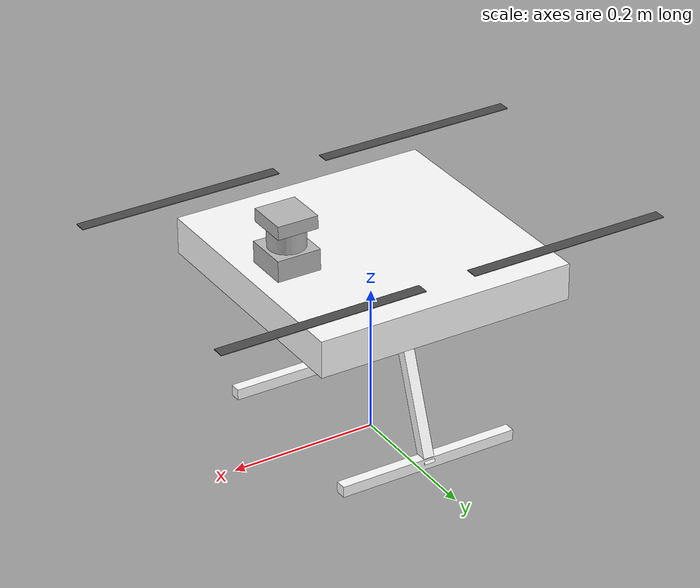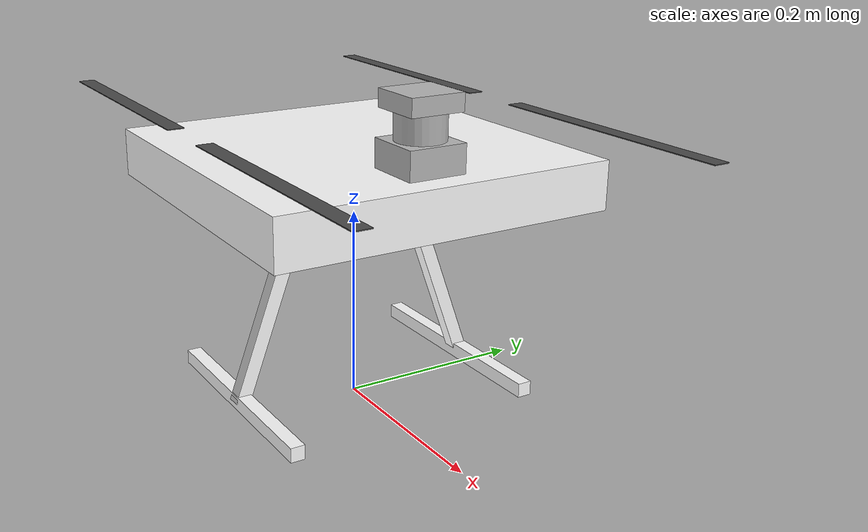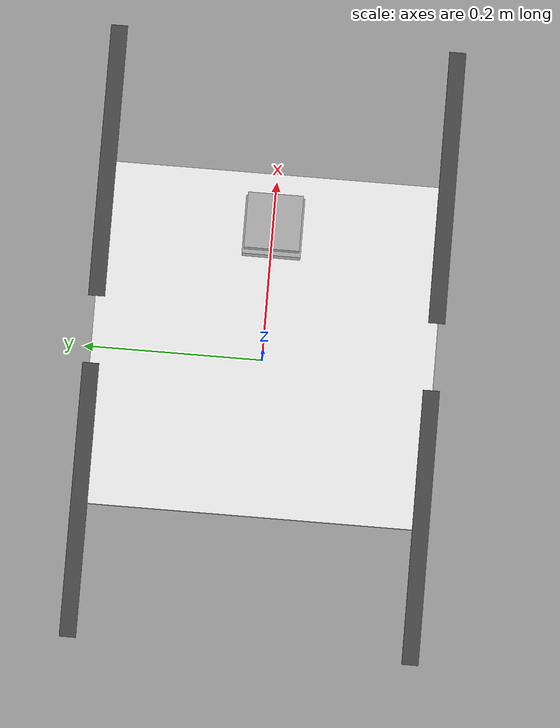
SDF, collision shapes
<?xml version="1.0" encoding="UTF-8"?>
<sdf version='1.9'>
  <model name='x500'>
    <include merge='true'>
      <uri>model://x500_base</uri>
    </include>
    <plugin filename="gz-sim-multicopter-motor-model-system" name="gz::sim::systems::MulticopterMotorModel">
      <jointName>rotor_0_joint</jointName>
      <linkName>rotor_0</linkName>
      <turningDirection>ccw</turningDirection>
      <timeConstantUp>0.0125</timeConstantUp>
      <timeConstantDown>0.025</timeConstantDown>
      <maxRotVelocity>1000.0</maxRotVelocity>
      <motorConstant>8.54858e-06</motorConstant>
      <momentConstant>0.016</momentConstant>
      <commandSubTopic>command/motor_speed</commandSubTopic>
      <motorNumber>0</motorNumber>
      <rotorDragCoefficient>8.06428e-05</rotorDragCoefficient>
      <rollingMomentCoefficient>1e-06</rollingMomentCoefficient>
      <rotorVelocitySlowdownSim>10</rotorVelocitySlowdownSim>
      <motorType>velocity</motorType>
    </plugin>
    <plugin filename="gz-sim-multicopter-motor-model-system" name="gz::sim::systems::MulticopterMotorModel">
      <jointName>rotor_1_joint</jointName>
      <linkName>rotor_1</linkName>
      <turningDirection>ccw</turningDirection>
      <timeConstantUp>0.0125</timeConstantUp>
      <timeConstantDown>0.025</timeConstantDown>
      <maxRotVelocity>1000.0</maxRotVelocity>
      <motorConstant>8.54858e-06</motorConstant>
      <momentConstant>0.016</momentConstant>
      <commandSubTopic>command/motor_speed</commandSubTopic>
      <motorNumber>1</motorNumber>
      <rotorDragCoefficient>8.06428e-05</rotorDragCoefficient>
      <rollingMomentCoefficient>1e-06</rollingMomentCoefficient>
      <rotorVelocitySlowdownSim>10</rotorVelocitySlowdownSim>
      <motorType>velocity</motorType>
    </plugin>
    <plugin filename="gz-sim-multicopter-motor-model-system" name="gz::sim::systems::MulticopterMotorModel">
      <jointName>rotor_2_joint</jointName>
      <linkName>rotor_2</linkName>
      <turningDirection>cw</turningDirection>
      <timeConstantUp>0.0125</timeConstantUp>
      <timeConstantDown>0.025</timeConstantDown>
      <maxRotVelocity>1000.0</maxRotVelocity>
      <motorConstant>8.54858e-06</motorConstant>
      <momentConstant>0.016</momentConstant>
      <commandSubTopic>command/motor_speed</commandSubTopic>
      <motorNumber>2</motorNumber>
      <rotorDragCoefficient>8.06428e-05</rotorDragCoefficient>
      <rollingMomentCoefficient>1e-06</rollingMomentCoefficient>
      <rotorVelocitySlowdownSim>10</rotorVelocitySlowdownSim>
      <motorType>velocity</motorType>
    </plugin>
    <plugin filename="gz-sim-multicopter-motor-model-system" name="gz::sim::systems::MulticopterMotorModel">
      <jointName>rotor_3_joint</jointName>
      <linkName>rotor_3</linkName>
      <turningDirection>cw</turningDirection>
      <timeConstantUp>0.0125</timeConstantUp>
      <timeConstantDown>0.025</timeConstantDown>
      <maxRotVelocity>1000.0</maxRotVelocity>
      <motorConstant>8.54858e-06</motorConstant>
      <momentConstant>0.016</momentConstant>
      <commandSubTopic>command/motor_speed</commandSubTopic>
      <motorNumber>3</motorNumber>
      <rotorDragCoefficient>8.06428e-05</rotorDragCoefficient>
      <rollingMomentCoefficient>1e-06</rollingMomentCoefficient>
      <rotorVelocitySlowdownSim>10</rotorVelocitySlowdownSim>
      <motorType>velocity</motorType>
    </plugin>

    <!-- Sensors -->

    <!-- Lidar 2d -->
    <include merge='true'>
      <uri>model://lidar_2d_v2</uri>
      <pose>.12 0 .26 0 0 0</pose>
    </include>
    <joint name="LidarJoint" type="fixed">
      <parent>base_link</parent>
      <child>link</child>
      <pose>0.0 0 .055 0 0 0</pose>
    </joint>

    <!-- Camera -->
    <include merge='true'>
      <uri>model://mono_cam</uri>
      <pose>.12 .03 .242 0 0 0</pose>
    </include>
    <joint name="CameraJoint" type="fixed">
      <parent>base_link</parent>
      <child>camera_link</child>
      <pose>.12 .03 .242 0 0 0</pose>
    </joint>

    <!-- Depth Camera -->
    <include merge='true'>
      <uri>model://OakD-Lite</uri>
      <pose>.12 .03 .242 0 0 0</pose>
    </include>
    <joint name="DepthCameraJoint" type="fixed">
      <parent>base_link</parent>
      <child>depth_camera_link</child>
      <pose>0.01233 -0.03 .01878 0 0 0</pose>
    </joint>

  </model>
</sdf>

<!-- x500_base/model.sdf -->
<sdf version='1.9'>
  <model name='x500_base'>
    <pose>0 0 .24 0 0 0</pose>
    <self_collide>false</self_collide>
    <static>false</static>
    <link name="base_link">
      <inertial>
        <mass>2.0</mass>
        <inertia>
          <ixx>0.02166666666666667</ixx>
          <ixy>0</ixy>
          <ixz>0</ixz>
          <iyy>0.02166666666666667</iyy>
          <iyz>0</iyz>
          <izz>0.04000000000000001</izz>
        </inertia>
      </inertial>
      <gravity>true</gravity>
      <velocity_decay/>
      <visual name="base_link_visual">
        <pose>0 0 .025 0 0 3.141592654</pose>
        <geometry>
          <mesh>
            <scale>1 1 1</scale>
            <uri>model://x500_base/meshes/NXP-HGD-CF.dae</uri>
          </mesh>
        </geometry>
      </visual>
      <visual name="5010_motor_base_0">
        <pose>0.174 0.174 .032 0 0 -.45</pose>
        <geometry>
          <mesh>
            <scale>1 1 1</scale>
            <uri>model://x500_base/meshes/5010Base.dae</uri>
          </mesh>
        </geometry>
      </visual>
      <visual name="5010_motor_base_1">
        <pose>-0.174 0.174 .032 0 0 -.45</pose>
        <geometry>
          <mesh>
            <scale>1 1 1</scale>
            <uri>model://x500_base/meshes/5010Base.dae</uri>
          </mesh>
        </geometry>
      </visual>
      <visual name="5010_motor_base_2">
        <pose>0.174 -0.174 .032 0 0 -.45</pose>
        <geometry>
          <mesh>
            <scale>1 1 1</scale>
            <uri>model://x500_base/meshes/5010Base.dae</uri>
          </mesh>
        </geometry>
      </visual>
      <visual name="5010_motor_base_3">
        <pose>-0.174 -0.174 .032 0 0 -.45</pose>
        <geometry>
          <mesh>
            <scale>1 1 1</scale>
            <uri>model://x500_base/meshes/5010Base.dae</uri>
          </mesh>
        </geometry>
      </visual>
      <visual name="NXP_FMUK66_FRONT">
        <pose>0.047 .001 .043 1 0 1.57</pose>
        <cast_shadows>false</cast_shadows>
        <geometry>
          <box>
            <size>.013 .007 0.0001</size>
          </box>
        </geometry>
        <material>
          <diffuse>1.0 1.0 1.0</diffuse>
          <specular>1.0 1.0 1.0</specular>
          <pbr>
            <metal>
              <albedo_map>model://x500_base/materials/textures/nxp.png</albedo_map>
            </metal>
          </pbr>
        </material>
      </visual>
      <visual name="NXP_FMUK66_TOP">
        <pose>-0.023 0 .0515 0 0 0</pose>
        <cast_shadows>false</cast_shadows>
        <geometry>
          <box>
            <size>.007 .013 0.0001</size>
          </box>
        </geometry>
        <material>
          <diffuse>1.0 1.0 1.0</diffuse>
          <specular>1.0 1.0 1.0</specular>
          <pbr>
            <metal>
              <albedo_map>model://x500_base/materials/textures/nxp.png</albedo_map>
            </metal>
          </pbr>
        </material>
      </visual>
      <visual name="RDDRONE_FMUK66_TOP">
        <pose>-.03 0 .0515 0 0 0</pose>
        <cast_shadows>false</cast_shadows>
        <geometry>
          <box>
            <size>.0034 .032 0.0001</size>
          </box>
        </geometry>
        <material>
          <diffuse>1.0 1.0 1.0</diffuse>
          <specular>1.0 1.0 1.0</specular>
          <pbr>
            <metal>
              <albedo_map>model://x500_base/materials/textures/rd.png</albedo_map>
            </metal>
          </pbr>
        </material>
      </visual>
      <collision name="base_link_collision_0">
        <pose>0 0 .007 0 0 0</pose>
        <geometry>
          <box>
            <size>0.35355339059327373 0.35355339059327373 0.05</size>
          </box>
        </geometry>
        <surface>
          <contact>
            <ode>
              <min_depth>0.001</min_depth>
              <max_vel>0</max_vel>
            </ode>
          </contact>
          <friction>
            <ode/>
          </friction>
        </surface>
      </collision>
      <collision name="base_link_collision_1">
        <pose>0 -0.098 -.123 -0.35 0 0</pose>
        <geometry>
          <box>
            <size>0.015 0.015 0.21</size>
          </box>
        </geometry>
        <surface>
          <contact>
            <ode>
              <min_depth>0.001</min_depth>
              <max_vel>0</max_vel>
            </ode>
          </contact>
          <friction>
            <ode/>
          </friction>
        </surface>
      </collision>
      <collision name="base_link_collision_2">
        <pose>0 0.098 -.123 0.35 0 0</pose>
        <geometry>
          <box>
            <size>0.015 0.015 0.21</size>
          </box>
        </geometry>
        <surface>
          <contact>
            <ode>
              <min_depth>0.001</min_depth>
              <max_vel>0</max_vel>
            </ode>
          </contact>
          <friction>
            <ode/>
          </friction>
        </surface>
      </collision>
      <collision name="base_link_collision_3">
        <pose>0 -0.132 -.2195 0 0 0</pose>
        <geometry>
          <box>
            <size>0.25 0.015 0.015</size>
          </box>
        </geometry>
        <surface>
          <contact>
            <ode>
              <min_depth>0.001</min_depth>
              <max_vel>0</max_vel>
            </ode>
          </contact>
          <friction>
            <ode/>
          </friction>
        </surface>
      </collision>
      <collision name="base_link_collision_4">
        <pose>0 0.132 -.2195 0 0 0</pose>
        <geometry>
          <box>
            <size>0.25 0.015 0.015</size>
          </box>
        </geometry>
        <surface>
          <contact>
            <ode>
              <min_depth>0.001</min_depth>
              <max_vel>0</max_vel>
            </ode>
          </contact>
          <friction>
            <ode/>
          </friction>
        </surface>
      </collision>
      <sensor name="air_pressure_sensor" type="air_pressure">
        <always_on>1</always_on>
        <update_rate>50</update_rate>
        <air_pressure>
          <!-- Noise modeled after BMP390 -->
          <pressure>
            <noise type="gaussian">
              <mean>0</mean>
              <stddev>3</stddev>
            </noise>
          </pressure>
        </air_pressure>
      </sensor>
      <sensor name="magnetometer_sensor" type="magnetometer">
        <always_on>1</always_on>
        <update_rate>100</update_rate>
        <magnetometer>
          <!-- TODO: update to fix units and coordinate system when we move past Harmonic -->
          <!-- See https://github.com/gazebosim/gz-sim/pull/2460 -->
          <!-- 3mgauss RMS: NOTE: noise is in tesla but sensor reports data in gauss -->
          <!-- Noise modeled after IIS2MDC -->
          <x>
            <noise type="gaussian">
              <stddev>0.0001</stddev>
            </noise>
          </x>
          <y>
            <noise type="gaussian">
              <stddev>0.0001</stddev>
            </noise>
          </y>
          <z>
            <noise type="gaussian">
              <stddev>0.0001</stddev>
            </noise>
          </z>
        </magnetometer>
      </sensor>
      <sensor name="imu_sensor" type="imu">
        <always_on>1</always_on>
        <update_rate>250</update_rate>
        <imu>
          <angular_velocity>
            <!-- Noise modeled after IIM42653 -->
            <!-- 0.05 deg/s converted to rad/s -->
            <x>
              <noise type="gaussian">
                <mean>0.0</mean>
                <stddev>0.0008726646</stddev>
              </noise>
            </x>
            <y>
              <noise type="gaussian">
                <mean>0.0</mean>
                <stddev>0.0008726646</stddev>
              </noise>
            </y>
            <z>
              <noise type="gaussian">
                <mean>0.0</mean>
                <stddev>0.0008726646</stddev>
              </noise>
            </z>
          </angular_velocity>
          <linear_acceleration>
            <!-- Noise modeled after IIM42653 -->
            <!-- X & Y axis: 0.65 mg-rms converted to m/ss -->
            <x>
              <noise type="gaussian">
                <mean>0.0</mean>
                <stddev>0.00637</stddev>
              </noise>
            </x>
            <y>
              <noise type="gaussian">
                <mean>0.0</mean>
                <stddev>0.00637</stddev>
              </noise>
            </y>
            <!-- Z axis: 0.70 mg-rms converted to m/ss-->
            <z>
              <noise type="gaussian">
                <mean>0.0</mean>
                <stddev>0.00686</stddev>
              </noise>
            </z>
          </linear_acceleration>
        </imu>
      </sensor>
      <sensor name="navsat_sensor" type="navsat">
        <always_on>1</always_on>
        <update_rate>30</update_rate>
      </sensor>
    </link>
    <link name="rotor_0">
      <gravity>true</gravity>
      <self_collide>false</self_collide>
      <velocity_decay/>
      <pose>0.174 -0.174 0.06 0 0 0</pose>
      <inertial>
          <mass>0.016076923076923075</mass>
          <inertia>
            <ixx>3.8464910483993325e-07</ixx>
            <iyy>2.6115851691700804e-05</iyy>
            <izz>2.649858234714004e-05</izz>
          </inertia>
        </inertial>
      <visual name="rotor_0_visual">
        <pose>-0.022 -0.14638461538461536 -0.016 0 0 0</pose>
        <geometry>
          <mesh>
            <scale>0.8461538461538461 0.8461538461538461 0.8461538461538461</scale>
            <uri>model://x500_base/meshes/1345_prop_ccw.stl</uri>
          </mesh>
        </geometry>
        <material>
          <script>
            <name>Gazebo/DarkGrey</name>
            <uri>file://media/materials/scripts/gazebo.material</uri>
          </script>
        </material>
      </visual>
      <visual name="rotor_0_visual_motor_bell">
        <pose>0 0 -.032 0 0 0</pose>
        <geometry>
          <mesh>
            <scale>1 1 1</scale>
            <uri>model://x500_base/meshes/5010Bell.dae</uri>
          </mesh>
        </geometry>
      </visual>
      <collision name="rotor_0_collision">
        <pose>0 0 0 0 0 0 </pose>
        <geometry>
          <box>
            <size>0.2792307692307692 0.016923076923076923 0.0008461538461538462</size>
          </box>
        </geometry>
        <surface>
          <contact>
            <ode>
              <min_depth>0.001</min_depth>
              <max_vel>0</max_vel>
            </ode>
          </contact>
          <friction>
            <ode/>
          </friction>
        </surface>
      </collision>
    </link>
    <joint name="rotor_0_joint" type="revolute">
      <parent>base_link</parent>
      <child>rotor_0</child>
      <axis>
        <xyz>0 0 1</xyz>
        <limit>
          <lower>-1e+16</lower>
          <upper>1e+16</upper>
        </limit>
        <dynamics>
          <spring_reference>0</spring_reference>
          <spring_stiffness>0</spring_stiffness>
        </dynamics>
      </axis>
    </joint>
    <link name="rotor_1">
      <gravity>true</gravity>
      <self_collide>false</self_collide>
      <velocity_decay/>
      <pose>-0.174 0.174 0.06 0 0 0</pose>
      <inertial>
          <mass>0.016076923076923075</mass>
          <inertia>
            <ixx>3.8464910483993325e-07</ixx>
            <iyy>2.6115851691700804e-05</iyy>
            <izz>2.649858234714004e-05</izz>
          </inertia>
        </inertial>
      <visual name="rotor_1_visual">
        <pose>-0.022 -0.14638461538461536 -0.016 0 0 0</pose>
        <geometry>
          <mesh>
            <scale>0.8461538461538461 0.8461538461538461 0.8461538461538461</scale>
            <uri>model://x500_base/meshes/1345_prop_ccw.stl</uri>
          </mesh>
        </geometry>
        <material>
          <script>
            <name>Gazebo/DarkGrey</name>
            <uri>file://media/materials/scripts/gazebo.material</uri>
          </script>
        </material>
      </visual>
      <visual name="rotor_1_visual_motor_top">
        <pose>0 0 -.032 0 0 0</pose>
        <geometry>
          <mesh>
            <scale>1 1 1</scale>
            <uri>model://x500_base/meshes/5010Bell.dae</uri>
          </mesh>
        </geometry>
      </visual>
      <collision name="rotor_1_collision">
        <pose>0 0 0 0 0 0 </pose>
        <geometry>
          <box>
            <size>0.2792307692307692 0.016923076923076923 0.0008461538461538462</size>
          </box>
        </geometry>
        <surface>
          <contact>
            <ode>
              <min_depth>0.001</min_depth>
              <max_vel>0</max_vel>
            </ode>
          </contact>
          <friction>
            <ode/>
          </friction>
        </surface>
      </collision>
    </link>
    <joint name="rotor_1_joint" type="revolute">
      <parent>base_link</parent>
      <child>rotor_1</child>
      <axis>
        <xyz>0 0 1</xyz>
        <limit>
          <lower>-1e+16</lower>
          <upper>1e+16</upper>
        </limit>
        <dynamics>
          <spring_reference>0</spring_reference>
          <spring_stiffness>0</spring_stiffness>
        </dynamics>
      </axis>
    </joint>
    <link name="rotor_2">
      <gravity>true</gravity>
      <self_collide>false</self_collide>
      <velocity_decay/>
      <pose>0.174 0.174 0.06 0 0 0</pose>
      <inertial>
          <mass>0.016076923076923075</mass>
          <inertia>
            <ixx>3.8464910483993325e-07</ixx>
            <iyy>2.6115851691700804e-05</iyy>
            <izz>2.649858234714004e-05</izz>
          </inertia>
        </inertial>
      <visual name="rotor_2_visual">
        <pose>-0.022 -0.14638461538461536 -0.016 0 0 0</pose>
        <geometry>
          <mesh>
            <scale>0.8461538461538461 0.8461538461538461 0.8461538461538461</scale>
            <uri>model://x500_base/meshes/1345_prop_cw.stl</uri>
          </mesh>
        </geometry>
        <material>
          <script>
            <name>Gazebo/DarkGrey</name>
            <uri>file://media/materials/scripts/gazebo.material</uri>
          </script>
        </material>
      </visual>
      <visual name="rotor_2_visual_motor_top">
        <pose>0 0 -.032 0 0 0</pose>
        <geometry>
          <mesh>
            <scale>1 1 1</scale>
            <uri>model://x500_base/meshes/5010Bell.dae</uri>
          </mesh>
        </geometry>
      </visual>
      <collision name="rotor_2_collision">
        <pose>0 0 0 0 0 0 </pose>
        <geometry>
          <box>
            <size>0.2792307692307692 0.016923076923076923 0.0008461538461538462</size>
          </box>
        </geometry>
        <surface>
          <contact>
            <ode>
              <min_depth>0.001</min_depth>
              <max_vel>0</max_vel>
            </ode>
          </contact>
          <friction>
            <ode/>
          </friction>
        </surface>
      </collision>
    </link>
    <joint name="rotor_2_joint" type="revolute">
      <parent>base_link</parent>
      <child>rotor_2</child>
      <axis>
        <xyz>0 0 1</xyz>
        <limit>
          <lower>-1e+16</lower>
          <upper>1e+16</upper>
        </limit>
        <dynamics>
          <spring_reference>0</spring_reference>
          <spring_stiffness>0</spring_stiffness>
        </dynamics>
      </axis>
    </joint>
    <link name="rotor_3">
      <gravity>true</gravity>
      <self_collide>false</self_collide>
      <velocity_decay/>
      <pose>-0.174 -0.174 0.06 0 0 0</pose>
      <inertial>
          <mass>0.016076923076923075</mass>
          <inertia>
            <ixx>3.8464910483993325e-07</ixx>
            <iyy>2.6115851691700804e-05</iyy>
            <izz>2.649858234714004e-05</izz>
          </inertia>
        </inertial>
      <visual name="rotor_3_visual">
        <pose>-0.022 -0.14638461538461536 -0.016 0 0 0</pose>
        <geometry>
          <mesh>
            <scale>0.8461538461538461 0.8461538461538461 0.8461538461538461</scale>
            <uri>model://x500_base/meshes/1345_prop_cw.stl</uri>
          </mesh>
        </geometry>
        <material>
          <script>
            <name>Gazebo/DarkGrey</name>
            <uri>file://media/materials/scripts/gazebo.material</uri>
          </script>
        </material>
      </visual>
      <visual name="rotor_3_visual_motor_top">
        <pose>0 0 -.032 0 0 0</pose>
        <geometry>
          <mesh>
            <scale>1 1 1</scale>
            <uri>model://x500_base/meshes/5010Bell.dae</uri>
          </mesh>
        </geometry>
      </visual>
      <collision name="rotor_3_collision">
        <pose>0 0 0 0 0 0 </pose>
        <geometry>
          <box>
            <size>0.2792307692307692 0.016923076923076923 0.0008461538461538462</size>
          </box>
        </geometry>
        <surface>
          <contact>
            <ode>
              <min_depth>0.001</min_depth>
              <max_vel>0</max_vel>
            </ode>
          </contact>
          <friction>
            <ode/>
          </friction>
        </surface>
      </collision>
    </link>
    <joint name="rotor_3_joint" type="revolute">
      <parent>base_link</parent>
      <child>rotor_3</child>
      <axis>
        <xyz>0 0 1</xyz>
        <limit>
          <lower>-1e+16</lower>
          <upper>1e+16</upper>
        </limit>
        <dynamics>
          <spring_reference>0</spring_reference>
          <spring_stiffness>0</spring_stiffness>
        </dynamics>
      </axis>
    </joint>
  </model>
</sdf>

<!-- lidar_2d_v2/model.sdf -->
<sdf version="1.6">
  <model name="lidar_2d_v2">
    <link name="link">
      <pose>0 0 0 0 0 0</pose>
      <inertial>
        <pose>0 0 0.0435 0 0 0</pose>
        <mass>0.37</mass>
        <inertia>
          <ixx>0.00034437749999999994</ixx>
          <ixy>0</ixy>
          <ixz>0</ixz>
          <iyy>0.00034437749999999994</iyy>
          <iyz>0</iyz>
          <izz>0.00022199999999999998</izz>
        </inertia>
      </inertial>
      <collision name="collision_base">
        <pose>0 0 0.0205 0 0 0</pose>
        <geometry>
          <box>
            <size>0.06 0.06 0.041</size>
          </box>
        </geometry>
      </collision>
      <collision name="collision_mid">
        <pose>0 0 0.055 0 0 0</pose>
        <geometry>
          <cylinder>
            <radius>0.025</radius>
            <length>0.028</length>
          </cylinder>
        </geometry>
      </collision>
      <collision name="collision_top">
        <pose>0 0 0.078 0 0 0</pose>
        <geometry>
          <box>
            <size>0.056 0.056 0.018</size>
          </box>
        </geometry>
      </collision>
      <visual name="visual">
        <geometry>
          <mesh>
            <uri>model://lidar_2d_v2/meshes/lidar_2d_v2.dae</uri>
          </mesh>
        </geometry>
      </visual>
      <sensor name="lidar_2d_v2" type="gpu_lidar">
        <pose>0 0 0.055 0 0 0</pose>
        <ray>
          <scan>
            <horizontal>
              <samples>1080</samples>
              <resolution>1</resolution>
              <min_angle>-2.356195</min_angle>
              <max_angle>2.356195</max_angle>
            </horizontal>
          </scan>
          <range>
            <min>0.1</min>
            <max>30</max>
            <resolution>0.01</resolution>
          </range>
          <noise>
            <type>gaussian</type>
            <mean>0.0</mean>
            <stddev>0.001</stddev>
          </noise>
        </ray>
        <always_on>0</always_on>
        <update_rate>30</update_rate>
        <visualize>false</visualize>

        <gz_frame_id> link </gz_frame_id>
      </sensor>
    </link>
  </model>
</sdf>

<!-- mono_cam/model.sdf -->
<sdf version='1.9'>
  <model name='mono_cam'>
    <pose>0 0 0 0 0 0</pose>
    <self_collide>false</self_collide>
    <static>false</static>
    <link name="camera_link">
      <inertial>
        <pose>0.03 0.03 0.03 0 0 0</pose>
        <mass>0.050</mass>
        <inertia>
          <ixx>0.00004</ixx>
          <ixy>0</ixy>
          <ixz>0</ixz>
          <iyy>0.00004</iyy>
          <iyz>0</iyz>
          <izz>0.00004</izz>
        </inertia>
      </inertial>
      <visual name="mono_cam/visual/housing">
        <geometry>
          <box>
            <size>0.02 0.04 0.04</size>
          </box>
        </geometry>
      </visual>
      <visual name="mono_cam/visual/lens">
        <pose>0.015 0 0 0 1.5707 0</pose>
        <geometry>
          <cylinder>
            <radius>0.008</radius>
            <length>0.01</length>
          </cylinder>
        </geometry>
      </visual>
      <visual name="mono_cam/visual/lens_glass">
        <pose>0.014 0 0 0 0 0</pose>
        <geometry>
          <sphere>
            <radius>0.0079</radius>
          </sphere>
        </geometry>
        <material>
          <ambient>.4 .4 .5 .95</ambient>
          <diffuse>.4 .4 .5 .95</diffuse>
          <specular>1 1 1 1</specular>
          <emissive>0 0 0 1</emissive>
        </material>
      </visual>
      <sensor name="imager" type="camera">
        <pose>0 0 0 0 0 0</pose>
        <camera>
          <horizontal_fov>1.74</horizontal_fov>
          <image>
            <width>640</width>
            <height>480</height>
          </image>
          <clip>
            <near>0.1</near>
            <far>3000</far>
          </clip>
        </camera>
        <always_on>1</always_on>
        <update_rate>30</update_rate>
        <visualize>true</visualize>

        <gz_frame_id> camera_link </gz_frame_id>
      </sensor>
      <gravity>true</gravity>
      <velocity_decay/>
    </link>
  </model>
</sdf>

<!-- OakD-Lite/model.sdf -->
<sdf version='1.9'>
  <model name='OakD-Lite'>
    <pose>0 0 0 0 0 0</pose>
    <self_collide>false</self_collide>
    <static>false</static>
    <link name="depth_camera_link">
      <inertial>
        <pose>0.00358 -0.03 .014 0 0 0</pose>
        <mass>0.061</mass>
        <inertia>
          <ixx>0.0000460804</ixx>
          <ixy>0</ixy>
          <ixz>0</ixz>
          <iyy>0.0000055421</iyy>
          <iyz>0</iyz>
          <izz>0.0000436519</izz>
        </inertia>
      </inertial>
      <visual name="OakD-Lite/visual">
        <pose>0 0 0 0 0 0</pose>
        <geometry>
          <mesh>
            <scale>1 1 1</scale>
            <uri>model://OakD-Lite/meshes/OakDLite.dae</uri>
          </mesh>
        </geometry>
      </visual>
      <collision name="OakD-Lite/collision">
        <pose>0.00358 -0.03 .014 0 0 0</pose>
        <geometry>
          <box>
            <size>0.0175 0.091 0.028</size>
          </box>
        </geometry>
      </collision>
      <sensor name="IMX214" type="camera">
        <pose>0.01233 -0.03 .01878 0 0 0</pose>
        <camera>
          <horizontal_fov>1.204</horizontal_fov>
          <image>
            <width>1920</width>
            <height>1080</height>
          </image>
          <clip>
            <near>0.1</near>
            <far>100</far>
          </clip>
        </camera>
        <always_on>1</always_on>
        <update_rate>30</update_rate>
        <visualize>true</visualize>

        <gz_frame_id> depth_camera_link </gz_frame_id>
      </sensor>
      <sensor name="StereoOV7251" type="depth_camera">
        <pose>0.01233 -0.03 .01878 0 0 0</pose>
        <camera>
          <horizontal_fov>1.274</horizontal_fov>
          <image>
            <width>640</width>
            <height>480</height>
            <format>R_FLOAT32</format>
          </image>
          <clip>
            <near>0.2</near>
            <far>19.1</far>
          </clip>
        </camera>
        <always_on>1</always_on>
        <update_rate>30</update_rate>
        <visualize>true</visualize>

        <gz_frame_id> depth_camera_link </gz_frame_id>
      </sensor>
      <gravity>true</gravity>
      <velocity_decay/>
    </link>
  </model>
</sdf>
